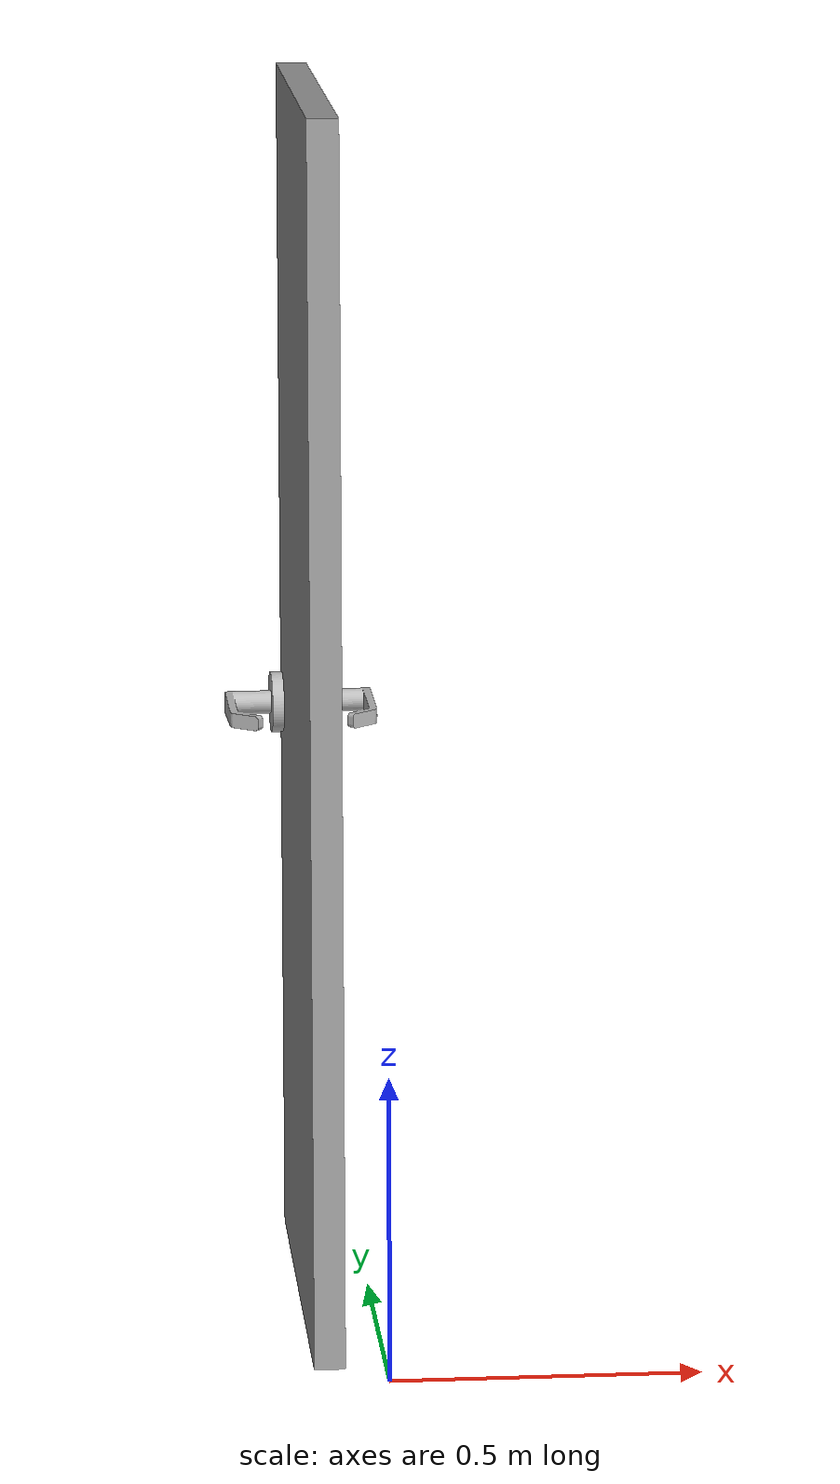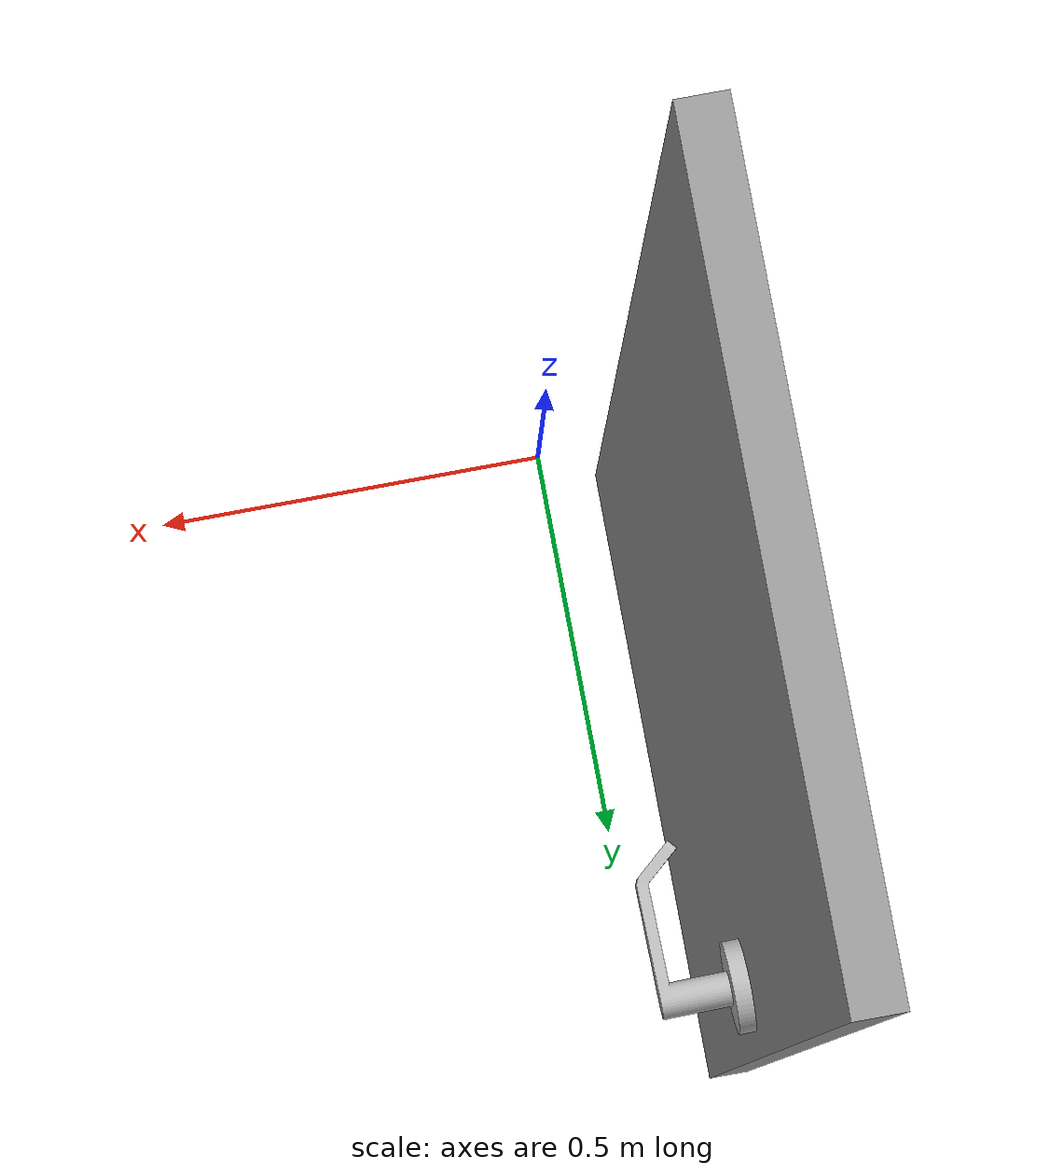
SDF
<?xml version='1.0'?>
<sdf version='1.7'>
  <model name='door'>
    <link name='door_link'>
      <inertial>
        <mass>32</mass>
        <inertia>
          <ixx>12.3733</ixx>
          <ixy>0</ixy>
          <ixz>0</ixz>
          <iyy>10.6733</iyy>
          <iyz>0</iyz>
          <izz>1.71333</izz>
        </inertia>
        <pose>0 0 0 0 -0 0</pose>
      </inertial>
      <self_collide>0</self_collide>
      <enable_wind>0</enable_wind>
      <kinematic>0</kinematic>
      <pose>-0.093879 0.43785 1.06043 0 -0 0</pose>
      <gravity>1</gravity>
      <visual name='visual'>
        <geometry>
          <box>
            <size>0.05 0.8 2</size>
          </box>
        </geometry>
        <material>
          <script>
            <name>Gazebo/Grey</name>
            <uri>file://media/materials/scripts/gazebo.material</uri>
          </script>
          <shader type='pixel'>
            <normal_map>__default__</normal_map>
          </shader>
          <ambient>0.3 0.3 0.3 1</ambient>
          <diffuse>0.7 0.7 0.7 1</diffuse>
          <specular>0.01 0.01 0.01 1</specular>
          <emissive>0 0 0 1</emissive>
        </material>
        <pose>0 0 -0.05 0 -0 0</pose>
        <transparency>0</transparency>
        <cast_shadows>1</cast_shadows>
      </visual>
      <collision name='collision'>
        <laser_retro>0</laser_retro>
        <max_contacts>10</max_contacts>
        <pose>0 0 -0.05 0 -0 0</pose>
        <geometry>
          <box>
            <size>0.05 0.8 2</size>
          </box>
        </geometry>
        <surface>
          <friction>
            <ode>
              <mu>1</mu>
              <mu2>1</mu2>
              <fdir1>0 0 0</fdir1>
              <slip1>0</slip1>
              <slip2>0</slip2>
            </ode>
            <torsional>
              <coefficient>1</coefficient>
              <patch_radius>0</patch_radius>
              <surface_radius>0</surface_radius>
              <use_patch_radius>1</use_patch_radius>
              <ode>
                <slip>0</slip>
              </ode>
            </torsional>
          </friction>
          <bounce>
            <restitution_coefficient>0</restitution_coefficient>
            <threshold>1e+06</threshold>
          </bounce>
          <contact>
            <collide_without_contact>0</collide_without_contact>
            <collide_without_contact_bitmask>1</collide_without_contact_bitmask>
            <collide_bitmask>1</collide_bitmask>
            <ode>
              <soft_cfm>0</soft_cfm>
              <soft_erp>0.2</soft_erp>
              <kp>1e+13</kp>
              <kd>1</kd>
              <max_vel>0.01</max_vel>
              <min_depth>0</min_depth>
            </ode>
            <bullet>
              <split_impulse>1</split_impulse>
              <split_impulse_penetration_threshold>-0.01</split_impulse_penetration_threshold>
              <soft_cfm>0</soft_cfm>
              <soft_erp>0.2</soft_erp>
              <kp>1e+13</kp>
              <kd>1</kd>
            </bullet>
          </contact>
        </surface>
      </collision>
    </link>
    <link name='handle'>
      <pose>-0.0688 0.757854 0.946982 -1.57096 0.003264 -1.55282</pose>
      <self_collide>0</self_collide>
      <inertial>
        <pose>0 0 0 0 -0 0</pose>
        <inertia>
          <ixx>1</ixx>
          <ixy>0</ixy>
          <ixz>0</ixz>
          <iyy>1</iyy>
          <iyz>0</iyz>
          <izz>1</izz>
        </inertia>
        <mass>1</mass>
      </inertial>
      <enable_wind>0</enable_wind>
      <kinematic>0</kinematic>
      <visual name='visual'>
        <geometry>
          <mesh>
            <uri>model://door_handle/meshes/door_handle.dae</uri>
          </mesh>
        </geometry>
        <material>
          <shader type='pixel' />
        </material>
        <pose>0 0 0 0 -0 0</pose>
        <transparency>0</transparency>
        <cast_shadows>1</cast_shadows>
      </visual>
      <collision name='collision'>
        <laser_retro>0</laser_retro>
        <max_contacts>10</max_contacts>
        <pose>0 0 0 0 -0 0</pose>
        <geometry>
          <mesh>
            <uri>/home/cp/.gazebo/models/door_handle/meshes/door_handle.dae</uri>
            <scale>1 1 1</scale>
          </mesh>
        </geometry>
        <surface>
          <friction>
            <ode>
              <mu>1</mu>
              <mu2>1</mu2>
              <fdir1>0 0 0</fdir1>
              <slip1>0</slip1>
              <slip2>0</slip2>
            </ode>
            <torsional>
              <coefficient>1</coefficient>
              <patch_radius>0</patch_radius>
              <surface_radius>0</surface_radius>
              <use_patch_radius>1</use_patch_radius>
              <ode>
                <slip>0</slip>
              </ode>
            </torsional>
          </friction>
          <bounce>
            <restitution_coefficient>0</restitution_coefficient>
            <threshold>1e+06</threshold>
          </bounce>
          <contact>
            <collide_without_contact>0</collide_without_contact>
            <collide_without_contact_bitmask>1</collide_without_contact_bitmask>
            <collide_bitmask>1</collide_bitmask>
            <ode>
              <soft_cfm>0</soft_cfm>
              <soft_erp>0.2</soft_erp>
              <kp>1e+13</kp>
              <kd>1</kd>
              <max_vel>0.01</max_vel>
              <min_depth>0</min_depth>
            </ode>
            <bullet>
              <split_impulse>1</split_impulse>
              <split_impulse_penetration_threshold>-0.01</split_impulse_penetration_threshold>
              <soft_cfm>0</soft_cfm>
              <soft_erp>0.2</soft_erp>
              <kp>1e+13</kp>
              <kd>1</kd>
            </bullet>
          </contact>
        </surface>
      </collision>
    </link>
    <link name='handle_clone'>
      <pose>-0.121337 0.755654 0.946698 1.5759 0.003192 -1.55219</pose>
      <self_collide>0</self_collide>
      <inertial>
        <pose>0 0 0 0 -0 0</pose>
        <inertia>
          <ixx>1</ixx>
          <ixy>0</ixy>
          <ixz>0</ixz>
          <iyy>1</iyy>
          <iyz>0</iyz>
          <izz>1</izz>
        </inertia>
        <mass>1</mass>
      </inertial>
      <enable_wind>0</enable_wind>
      <kinematic>0</kinematic>
      <visual name='visual'>
        <geometry>
          <mesh>
            <uri>model://door_handle/meshes/door_handle.dae</uri>
          </mesh>
        </geometry>
        <material>
          <shader type='pixel' />
        </material>
        <pose>0 0 0 0 -0 0</pose>
        <transparency>0</transparency>
        <cast_shadows>1</cast_shadows>
      </visual>
      <collision name='collision'>
        <laser_retro>0</laser_retro>
        <max_contacts>10</max_contacts>
        <pose>0 0 0 0 -0 0</pose>
        <geometry>
          <mesh>
            <uri>/home/cp/.gazebo/models/door_handle/meshes/door_handle.dae</uri>
            <scale>1 1 1</scale>
          </mesh>
        </geometry>
        <surface>
          <friction>
            <ode>
              <mu>1</mu>
              <mu2>1</mu2>
              <fdir1>0 0 0</fdir1>
              <slip1>0</slip1>
              <slip2>0</slip2>
            </ode>
            <torsional>
              <coefficient>1</coefficient>
              <patch_radius>0</patch_radius>
              <surface_radius>0</surface_radius>
              <use_patch_radius>1</use_patch_radius>
              <ode>
                <slip>0</slip>
              </ode>
            </torsional>
          </friction>
          <bounce>
            <restitution_coefficient>0</restitution_coefficient>
            <threshold>1e+06</threshold>
          </bounce>
          <contact>
            <collide_without_contact>0</collide_without_contact>
            <collide_without_contact_bitmask>1</collide_without_contact_bitmask>
            <collide_bitmask>1</collide_bitmask>
            <ode>
              <soft_cfm>0</soft_cfm>
              <soft_erp>0.2</soft_erp>
              <kp>1e+13</kp>
              <kd>1</kd>
              <max_vel>0.01</max_vel>
              <min_depth>0</min_depth>
            </ode>
            <bullet>
              <split_impulse>1</split_impulse>
              <split_impulse_penetration_threshold>-0.01</split_impulse_penetration_threshold>
              <soft_cfm>0</soft_cfm>
              <soft_erp>0.2</soft_erp>
              <kp>1e+13</kp>
              <kd>1</kd>
            </bullet>
          </contact>
        </surface>
      </collision>
    </link>
    <joint name='door_handle' type='revolute'>
      <parent>door_link</parent>
      <child>handle</child>
      <pose>0 0 0 0 -0 0</pose>
      <axis>
        <xyz>0 0 1</xyz>
        <limit>
          <lower>-2</lower>
          <upper>2</upper>
          <effort>6</effort>
          <velocity>10</velocity>
        </limit>
        <dynamics>
          <spring_reference>0</spring_reference>
          <spring_stiffness>0</spring_stiffness>
          <damping>0.05</damping>
          <friction>0</friction>
        </dynamics>
      </axis>
      <physics>
        <ode>
          <limit>
            <cfm>0</cfm>
            <erp>0.2</erp>
          </limit>
          <suspension>
            <cfm>0</cfm>
            <erp>0.2</erp>
          </suspension>
        </ode>
      </physics>
    </joint>
    <joint name='back_door_handle' type='revolute'>
      <parent>door_link</parent>
      <child>handle_clone</child>
      <pose>0 0 0 0 -0 0</pose>
      <axis>
        <xyz>0 0 1</xyz>
        <limit>
          <lower>-2</lower>
          <upper>2</upper>
          <effort>6</effort>
          <velocity>10</velocity>
        </limit>
        <dynamics>
          <spring_reference>0</spring_reference>
          <spring_stiffness>0</spring_stiffness>
          <damping>0.05</damping>
          <friction>0</friction>
        </dynamics>
      </axis>
      <physics>
        <ode>
          <limit>
            <cfm>0</cfm>
            <erp>0.2</erp>
          </limit>
          <suspension>
            <cfm>0</cfm>
            <erp>0.2</erp>
          </suspension>
        </ode>
      </physics>
    </joint>
    <static>0</static>
    <allow_auto_disable>1</allow_auto_disable>
    <joint name="world_root" type="revolute">
      <parent>world</parent>
      <child>door_link</child>
      <axis>
        <xyz>0 0 1</xyz>
        <limit>
          <effort>6</effort>
          <velocity>10.0</velocity>
          <lower>-2</lower>
          <upper>2</upper>
        </limit>

        <dynamics>
          <damping>0.05</damping>
        </dynamics>
      </axis>
      <pose frame="door_link"> 0 -0.40 0 0 0 0 </pose>

    </joint>
  </model>
</sdf>
